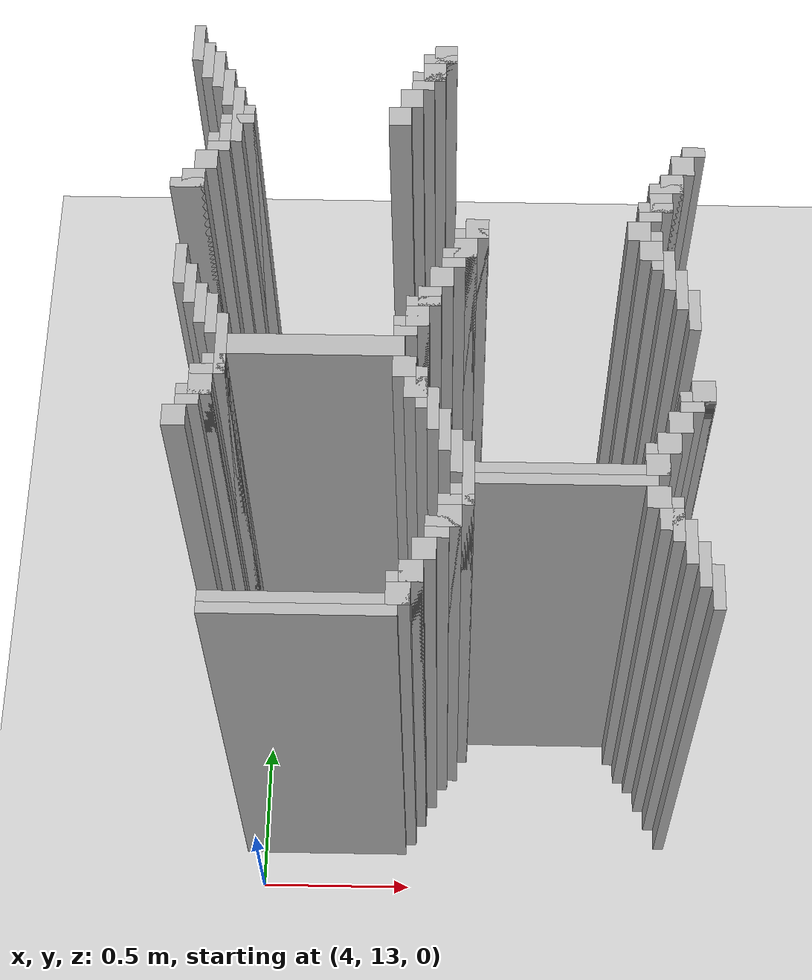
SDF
<sdf version="1.6">
 <world name="slam_world">
  <model name="ground_plane">
   <static>true</static>
   <link name="link">
    <collision name="collision">
     <geometry><plane><normal>0 0 1</normal><size>100 100</size></plane></geometry>
    </collision>
    <visual name="visual">
     <geometry><plane><normal>0 0 1</normal><size>100 100</size></plane></geometry>
     <material>
      <ambient>0.8 0.8 0.8 1</ambient>
      <diffuse>0.8 0.8 0.8 1</diffuse>
      <specular>0.8 0.8 0.8 1</specular>
     </material>
    </visual>
   </link>
  </model>
  <model name="wall_764">
   <static>true</static>
   <pose>3.810904872389791 15.104408352668212 1.0 0 0 0</pose>
   <link name="link">
    <collision name="collision">
     <geometry><box><size>0.03480278422273782 0.13921113689095127 2.0</size></box></geometry>
    </collision>
    <visual name="visual">
     <geometry><box><size>0.03480278422273782 0.13921113689095127 2.0</size></box></geometry>
     <material><ambient>0.5 0.5 0.5 1</ambient><diffuse>0.7 0.7 0.7 1</diffuse></material>
    </visual>
   </link>
  </model>
  <model name="wall_776">
   <static>true</static>
   <pose>3.845707656612529 15.034802784222737 1.0 0 0 0</pose>
   <link name="link">
    <collision name="collision">
     <geometry><box><size>0.03480278422273782 0.13921113689095127 2.0</size></box></geometry>
    </collision>
    <visual name="visual">
     <geometry><box><size>0.03480278422273782 0.13921113689095127 2.0</size></box></geometry>
     <material><ambient>0.5 0.5 0.5 1</ambient><diffuse>0.7 0.7 0.7 1</diffuse></material>
    </visual>
   </link>
  </model>
  <model name="wall_777">
   <static>true</static>
   <pose>4.593967517401392 15.069605568445475 1.0 0 0 0</pose>
   <link name="link">
    <collision name="collision">
     <geometry><box><size>0.06960556844547564 0.06960556844547564 2.0</size></box></geometry>
    </collision>
    <visual name="visual">
     <geometry><box><size>0.06960556844547564 0.06960556844547564 2.0</size></box></geometry>
     <material><ambient>0.5 0.5 0.5 1</ambient><diffuse>0.7 0.7 0.7 1</diffuse></material>
    </visual>
   </link>
  </model>
  <model name="wall_788">
   <static>true</static>
   <pose>3.8805104408352666 15.0 1.0 0 0 0</pose>
   <link name="link">
    <collision name="collision">
     <geometry><box><size>0.03480278422273782 0.13921113689095127 2.0</size></box></geometry>
    </collision>
    <visual name="visual">
     <geometry><box><size>0.03480278422273782 0.13921113689095127 2.0</size></box></geometry>
     <material><ambient>0.5 0.5 0.5 1</ambient><diffuse>0.7 0.7 0.7 1</diffuse></material>
    </visual>
   </link>
  </model>
  <model name="wall_789">
   <static>true</static>
   <pose>4.576566125290023 15.052204176334106 1.0 0 0 0</pose>
   <link name="link">
    <collision name="collision">
     <geometry><box><size>0.10440835266821345 0.03480278422273782 2.0</size></box></geometry>
    </collision>
    <visual name="visual">
     <geometry><box><size>0.10440835266821345 0.03480278422273782 2.0</size></box></geometry>
     <material><ambient>0.5 0.5 0.5 1</ambient><diffuse>0.7 0.7 0.7 1</diffuse></material>
    </visual>
   </link>
  </model>
  <model name="wall_800">
   <static>true</static>
   <pose>4.559164733178654 15.0 1.0 0 0 0</pose>
   <link name="link">
    <collision name="collision">
     <geometry><box><size>0.06960556844547564 0.06960556844547564 2.0</size></box></geometry>
    </collision>
    <visual name="visual">
     <geometry><box><size>0.06960556844547564 0.06960556844547564 2.0</size></box></geometry>
     <material><ambient>0.5 0.5 0.5 1</ambient><diffuse>0.7 0.7 0.7 1</diffuse></material>
    </visual>
   </link>
  </model>
  <model name="wall_809">
   <static>true</static>
   <pose>3.9153132250580045 14.930394431554523 1.0 0 0 0</pose>
   <link name="link">
    <collision name="collision">
     <geometry><box><size>0.03480278422273782 0.13921113689095127 2.0</size></box></geometry>
    </collision>
    <visual name="visual">
     <geometry><box><size>0.03480278422273782 0.13921113689095127 2.0</size></box></geometry>
     <material><ambient>0.5 0.5 0.5 1</ambient><diffuse>0.7 0.7 0.7 1</diffuse></material>
    </visual>
   </link>
  </model>
  <model name="wall_810">
   <static>true</static>
   <pose>4.541763341067285 14.982598607888631 1.0 0 0 0</pose>
   <link name="link">
    <collision name="collision">
     <geometry><box><size>0.10440835266821345 0.03480278422273782 2.0</size></box></geometry>
    </collision>
    <visual name="visual">
     <geometry><box><size>0.10440835266821345 0.03480278422273782 2.0</size></box></geometry>
     <material><ambient>0.5 0.5 0.5 1</ambient><diffuse>0.7 0.7 0.7 1</diffuse></material>
    </visual>
   </link>
  </model>
  <model name="wall_820">
   <static>true</static>
   <pose>4.524361948955916 14.947795823665892 1.0 0 0 0</pose>
   <link name="link">
    <collision name="collision">
     <geometry><box><size>0.06960556844547564 0.03480278422273782 2.0</size></box></geometry>
    </collision>
    <visual name="visual">
     <geometry><box><size>0.06960556844547564 0.03480278422273782 2.0</size></box></geometry>
     <material><ambient>0.5 0.5 0.5 1</ambient><diffuse>0.7 0.7 0.7 1</diffuse></material>
    </visual>
   </link>
  </model>
  <model name="wall_829">
   <static>true</static>
   <pose>3.9501160092807424 14.825986078886311 1.0 0 0 0</pose>
   <link name="link">
    <collision name="collision">
     <geometry><box><size>0.03480278422273782 0.2088167053364269 2.0</size></box></geometry>
    </collision>
    <visual name="visual">
     <geometry><box><size>0.03480278422273782 0.2088167053364269 2.0</size></box></geometry>
     <material><ambient>0.5 0.5 0.5 1</ambient><diffuse>0.7 0.7 0.7 1</diffuse></material>
    </visual>
   </link>
  </model>
  <model name="wall_830">
   <static>true</static>
   <pose>4.489559164733178 14.895591647331786 1.0 0 0 0</pose>
   <link name="link">
    <collision name="collision">
     <geometry><box><size>0.06960556844547564 0.06960556844547564 2.0</size></box></geometry>
    </collision>
    <visual name="visual">
     <geometry><box><size>0.06960556844547564 0.06960556844547564 2.0</size></box></geometry>
     <material><ambient>0.5 0.5 0.5 1</ambient><diffuse>0.7 0.7 0.7 1</diffuse></material>
    </visual>
   </link>
  </model>
  <model name="wall_846">
   <static>true</static>
   <pose>3.98491879350348 14.825986078886311 1.0 0 0 0</pose>
   <link name="link">
    <collision name="collision">
     <geometry><box><size>0.03480278422273782 0.06960556844547564 2.0</size></box></geometry>
    </collision>
    <visual name="visual">
     <geometry><box><size>0.03480278422273782 0.06960556844547564 2.0</size></box></geometry>
     <material><ambient>0.5 0.5 0.5 1</ambient><diffuse>0.7 0.7 0.7 1</diffuse></material>
    </visual>
   </link>
  </model>
  <model name="wall_847">
   <static>true</static>
   <pose>4.454756380510441 14.825986078886311 1.0 0 0 0</pose>
   <link name="link">
    <collision name="collision">
     <geometry><box><size>0.06960556844547564 0.06960556844547564 2.0</size></box></geometry>
    </collision>
    <visual name="visual">
     <geometry><box><size>0.06960556844547564 0.06960556844547564 2.0</size></box></geometry>
     <material><ambient>0.5 0.5 0.5 1</ambient><diffuse>0.7 0.7 0.7 1</diffuse></material>
    </visual>
   </link>
  </model>
  <model name="wall_859">
   <static>true</static>
   <pose>3.9501160092807424 14.80858468677494 1.0 0 0 0</pose>
   <link name="link">
    <collision name="collision">
     <geometry><box><size>0.10440835266821345 0.03480278422273782 2.0</size></box></geometry>
    </collision>
    <visual name="visual">
     <geometry><box><size>0.10440835266821345 0.03480278422273782 2.0</size></box></geometry>
     <material><ambient>0.5 0.5 0.5 1</ambient><diffuse>0.7 0.7 0.7 1</diffuse></material>
    </visual>
   </link>
  </model>
  <model name="wall_870">
   <static>true</static>
   <pose>3.932714617169373 14.756380510440835 1.0 0 0 0</pose>
   <link name="link">
    <collision name="collision">
     <geometry><box><size>0.06960556844547564 0.06960556844547564 2.0</size></box></geometry>
    </collision>
    <visual name="visual">
     <geometry><box><size>0.06960556844547564 0.06960556844547564 2.0</size></box></geometry>
     <material><ambient>0.5 0.5 0.5 1</ambient><diffuse>0.7 0.7 0.7 1</diffuse></material>
    </visual>
   </link>
  </model>
  <model name="wall_882">
   <static>true</static>
   <pose>3.9153132250580045 14.738979118329466 1.0 0 0 0</pose>
   <link name="link">
    <collision name="collision">
     <geometry><box><size>0.10440835266821345 0.03480278422273782 2.0</size></box></geometry>
    </collision>
    <visual name="visual">
     <geometry><box><size>0.10440835266821345 0.03480278422273782 2.0</size></box></geometry>
     <material><ambient>0.5 0.5 0.5 1</ambient><diffuse>0.7 0.7 0.7 1</diffuse></material>
    </visual>
   </link>
  </model>
  <model name="wall_892">
   <static>true</static>
   <pose>3.897911832946636 14.704176334106728 1.0 0 0 0</pose>
   <link name="link">
    <collision name="collision">
     <geometry><box><size>0.06960556844547564 0.03480278422273782 2.0</size></box></geometry>
    </collision>
    <visual name="visual">
     <geometry><box><size>0.06960556844547564 0.03480278422273782 2.0</size></box></geometry>
     <material><ambient>0.5 0.5 0.5 1</ambient><diffuse>0.7 0.7 0.7 1</diffuse></material>
    </visual>
   </link>
  </model>
  <model name="wall_893">
   <static>true</static>
   <pose>5.359628770301624 14.704176334106728 1.0 0 0 0</pose>
   <link name="link">
    <collision name="collision">
     <geometry><box><size>0.06960556844547564 0.03480278422273782 2.0</size></box></geometry>
    </collision>
    <visual name="visual">
     <geometry><box><size>0.06960556844547564 0.03480278422273782 2.0</size></box></geometry>
     <material><ambient>0.5 0.5 0.5 1</ambient><diffuse>0.7 0.7 0.7 1</diffuse></material>
    </visual>
   </link>
  </model>
  <model name="wall_902">
   <static>true</static>
   <pose>3.863109048723898 14.65197215777262 1.0 0 0 0</pose>
   <link name="link">
    <collision name="collision">
     <geometry><box><size>0.06960556844547564 0.06960556844547564 2.0</size></box></geometry>
    </collision>
    <visual name="visual">
     <geometry><box><size>0.06960556844547564 0.06960556844547564 2.0</size></box></geometry>
     <material><ambient>0.5 0.5 0.5 1</ambient><diffuse>0.7 0.7 0.7 1</diffuse></material>
    </visual>
   </link>
  </model>
  <model name="wall_903">
   <static>true</static>
   <pose>5.324825986078886 14.65197215777262 1.0 0 0 0</pose>
   <link name="link">
    <collision name="collision">
     <geometry><box><size>0.06960556844547564 0.06960556844547564 2.0</size></box></geometry>
    </collision>
    <visual name="visual">
     <geometry><box><size>0.06960556844547564 0.06960556844547564 2.0</size></box></geometry>
     <material><ambient>0.5 0.5 0.5 1</ambient><diffuse>0.7 0.7 0.7 1</diffuse></material>
    </visual>
   </link>
  </model>
  <model name="wall_914">
   <static>true</static>
   <pose>3.82830626450116 14.582366589327146 1.0 0 0 0</pose>
   <link name="link">
    <collision name="collision">
     <geometry><box><size>0.06960556844547564 0.06960556844547564 2.0</size></box></geometry>
    </collision>
    <visual name="visual">
     <geometry><box><size>0.06960556844547564 0.06960556844547564 2.0</size></box></geometry>
     <material><ambient>0.5 0.5 0.5 1</ambient><diffuse>0.7 0.7 0.7 1</diffuse></material>
    </visual>
   </link>
  </model>
  <model name="wall_915">
   <static>true</static>
   <pose>5.290023201856148 14.582366589327146 1.0 0 0 0</pose>
   <link name="link">
    <collision name="collision">
     <geometry><box><size>0.06960556844547564 0.06960556844547564 2.0</size></box></geometry>
    </collision>
    <visual name="visual">
     <geometry><box><size>0.06960556844547564 0.06960556844547564 2.0</size></box></geometry>
     <material><ambient>0.5 0.5 0.5 1</ambient><diffuse>0.7 0.7 0.7 1</diffuse></material>
    </visual>
   </link>
  </model>
  <model name="wall_926">
   <static>true</static>
   <pose>3.810904872389791 14.564965197215777 1.0 0 0 0</pose>
   <link name="link">
    <collision name="collision">
     <geometry><box><size>0.10440835266821345 0.03480278422273782 2.0</size></box></geometry>
    </collision>
    <visual name="visual">
     <geometry><box><size>0.10440835266821345 0.03480278422273782 2.0</size></box></geometry>
     <material><ambient>0.5 0.5 0.5 1</ambient><diffuse>0.7 0.7 0.7 1</diffuse></material>
    </visual>
   </link>
  </model>
  <model name="wall_927">
   <static>true</static>
   <pose>5.27262180974478 14.564965197215777 1.0 0 0 0</pose>
   <link name="link">
    <collision name="collision">
     <geometry><box><size>0.10440835266821345 0.03480278422273782 2.0</size></box></geometry>
    </collision>
    <visual name="visual">
     <geometry><box><size>0.10440835266821345 0.03480278422273782 2.0</size></box></geometry>
     <material><ambient>0.5 0.5 0.5 1</ambient><diffuse>0.7 0.7 0.7 1</diffuse></material>
    </visual>
   </link>
  </model>
  <model name="wall_937">
   <static>true</static>
   <pose>5.25522041763341 14.512761020881669 1.0 0 0 0</pose>
   <link name="link">
    <collision name="collision">
     <geometry><box><size>0.06960556844547564 0.06960556844547564 2.0</size></box></geometry>
    </collision>
    <visual name="visual">
     <geometry><box><size>0.06960556844547564 0.06960556844547564 2.0</size></box></geometry>
     <material><ambient>0.5 0.5 0.5 1</ambient><diffuse>0.7 0.7 0.7 1</diffuse></material>
    </visual>
   </link>
  </model>
  <model name="wall_946">
   <static>true</static>
   <pose>5.237819025522041 14.4953596287703 1.0 0 0 0</pose>
   <link name="link">
    <collision name="collision">
     <geometry><box><size>0.10440835266821345 0.03480278422273782 2.0</size></box></geometry>
    </collision>
    <visual name="visual">
     <geometry><box><size>0.10440835266821345 0.03480278422273782 2.0</size></box></geometry>
     <material><ambient>0.5 0.5 0.5 1</ambient><diffuse>0.7 0.7 0.7 1</diffuse></material>
    </visual>
   </link>
  </model>
  <model name="wall_956">
   <static>true</static>
   <pose>5.220417633410673 14.460556844547563 1.0 0 0 0</pose>
   <link name="link">
    <collision name="collision">
     <geometry><box><size>0.06960556844547564 0.03480278422273782 2.0</size></box></geometry>
    </collision>
    <visual name="visual">
     <geometry><box><size>0.06960556844547564 0.03480278422273782 2.0</size></box></geometry>
     <material><ambient>0.5 0.5 0.5 1</ambient><diffuse>0.7 0.7 0.7 1</diffuse></material>
    </visual>
   </link>
  </model>
  <model name="wall_966">
   <static>true</static>
   <pose>4.698375870069605 14.408352668213457 1.0 0 0 0</pose>
   <link name="link">
    <collision name="collision">
     <geometry><box><size>0.06960556844547564 0.06960556844547564 2.0</size></box></geometry>
    </collision>
    <visual name="visual">
     <geometry><box><size>0.06960556844547564 0.06960556844547564 2.0</size></box></geometry>
     <material><ambient>0.5 0.5 0.5 1</ambient><diffuse>0.7 0.7 0.7 1</diffuse></material>
    </visual>
   </link>
  </model>
  <model name="wall_967">
   <static>true</static>
   <pose>5.185614849187935 14.408352668213457 1.0 0 0 0</pose>
   <link name="link">
    <collision name="collision">
     <geometry><box><size>0.06960556844547564 0.06960556844547564 2.0</size></box></geometry>
    </collision>
    <visual name="visual">
     <geometry><box><size>0.06960556844547564 0.06960556844547564 2.0</size></box></geometry>
     <material><ambient>0.5 0.5 0.5 1</ambient><diffuse>0.7 0.7 0.7 1</diffuse></material>
    </visual>
   </link>
  </model>
  <model name="wall_980">
   <static>true</static>
   <pose>4.6809744779582365 14.390951276102088 1.0 0 0 0</pose>
   <link name="link">
    <collision name="collision">
     <geometry><box><size>0.10440835266821345 0.03480278422273782 2.0</size></box></geometry>
    </collision>
    <visual name="visual">
     <geometry><box><size>0.10440835266821345 0.03480278422273782 2.0</size></box></geometry>
     <material><ambient>0.5 0.5 0.5 1</ambient><diffuse>0.7 0.7 0.7 1</diffuse></material>
    </visual>
   </link>
  </model>
  <model name="wall_981">
   <static>true</static>
   <pose>5.237819025522041 14.33874709976798 1.0 0 0 0</pose>
   <link name="link">
    <collision name="collision">
     <geometry><box><size>0.03480278422273782 0.13921113689095127 2.0</size></box></geometry>
    </collision>
    <visual name="visual">
     <geometry><box><size>0.03480278422273782 0.13921113689095127 2.0</size></box></geometry>
     <material><ambient>0.5 0.5 0.5 1</ambient><diffuse>0.7 0.7 0.7 1</diffuse></material>
    </visual>
   </link>
  </model>
  <model name="wall_995">
   <static>true</static>
   <pose>4.663573085846868 14.33874709976798 1.0 0 0 0</pose>
   <link name="link">
    <collision name="collision">
     <geometry><box><size>0.06960556844547564 0.06960556844547564 2.0</size></box></geometry>
    </collision>
    <visual name="visual">
     <geometry><box><size>0.06960556844547564 0.06960556844547564 2.0</size></box></geometry>
     <material><ambient>0.5 0.5 0.5 1</ambient><diffuse>0.7 0.7 0.7 1</diffuse></material>
    </visual>
   </link>
  </model>
  <model name="wall_996">
   <static>true</static>
   <pose>5.220417633410673 14.33874709976798 1.0 0 0 0</pose>
   <link name="link">
    <collision name="collision">
     <geometry><box><size>0.06960556844547564 0.06960556844547564 2.0</size></box></geometry>
    </collision>
    <visual name="visual">
     <geometry><box><size>0.06960556844547564 0.06960556844547564 2.0</size></box></geometry>
     <material><ambient>0.5 0.5 0.5 1</ambient><diffuse>0.7 0.7 0.7 1</diffuse></material>
    </visual>
   </link>
  </model>
  <model name="wall_1009">
   <static>true</static>
   <pose>3.810904872389791 14.269141531322505 1.0 0 0 0</pose>
   <link name="link">
    <collision name="collision">
     <geometry><box><size>0.03480278422273782 0.13921113689095127 2.0</size></box></geometry>
    </collision>
    <visual name="visual">
     <geometry><box><size>0.03480278422273782 0.13921113689095127 2.0</size></box></geometry>
     <material><ambient>0.5 0.5 0.5 1</ambient><diffuse>0.7 0.7 0.7 1</diffuse></material>
    </visual>
   </link>
  </model>
  <model name="wall_1010">
   <static>true</static>
   <pose>4.646171693735498 14.321345707656612 1.0 0 0 0</pose>
   <link name="link">
    <collision name="collision">
     <geometry><box><size>0.10440835266821345 0.03480278422273782 2.0</size></box></geometry>
    </collision>
    <visual name="visual">
     <geometry><box><size>0.10440835266821345 0.03480278422273782 2.0</size></box></geometry>
     <material><ambient>0.5 0.5 0.5 1</ambient><diffuse>0.7 0.7 0.7 1</diffuse></material>
    </visual>
   </link>
  </model>
  <model name="wall_1011">
   <static>true</static>
   <pose>5.27262180974478 14.269141531322505 1.0 0 0 0</pose>
   <link name="link">
    <collision name="collision">
     <geometry><box><size>0.03480278422273782 0.13921113689095127 2.0</size></box></geometry>
    </collision>
    <visual name="visual">
     <geometry><box><size>0.03480278422273782 0.13921113689095127 2.0</size></box></geometry>
     <material><ambient>0.5 0.5 0.5 1</ambient><diffuse>0.7 0.7 0.7 1</diffuse></material>
    </visual>
   </link>
  </model>
  <model name="wall_1024">
   <static>true</static>
   <pose>4.6287703016241295 14.286542923433874 1.0 0 0 0</pose>
   <link name="link">
    <collision name="collision">
     <geometry><box><size>0.06960556844547564 0.03480278422273782 2.0</size></box></geometry>
    </collision>
    <visual name="visual">
     <geometry><box><size>0.06960556844547564 0.03480278422273782 2.0</size></box></geometry>
     <material><ambient>0.5 0.5 0.5 1</ambient><diffuse>0.7 0.7 0.7 1</diffuse></material>
    </visual>
   </link>
  </model>
  <model name="wall_1033">
   <static>true</static>
   <pose>3.845707656612529 14.199535962877029 1.0 0 0 0</pose>
   <link name="link">
    <collision name="collision">
     <geometry><box><size>0.03480278422273782 0.13921113689095127 2.0</size></box></geometry>
    </collision>
    <visual name="visual">
     <geometry><box><size>0.03480278422273782 0.13921113689095127 2.0</size></box></geometry>
     <material><ambient>0.5 0.5 0.5 1</ambient><diffuse>0.7 0.7 0.7 1</diffuse></material>
    </visual>
   </link>
  </model>
  <model name="wall_1034">
   <static>true</static>
   <pose>4.593967517401392 14.234338747099768 1.0 0 0 0</pose>
   <link name="link">
    <collision name="collision">
     <geometry><box><size>0.06960556844547564 0.06960556844547564 2.0</size></box></geometry>
    </collision>
    <visual name="visual">
     <geometry><box><size>0.06960556844547564 0.06960556844547564 2.0</size></box></geometry>
     <material><ambient>0.5 0.5 0.5 1</ambient><diffuse>0.7 0.7 0.7 1</diffuse></material>
    </visual>
   </link>
  </model>
  <model name="wall_1035">
   <static>true</static>
   <pose>5.307424593967517 14.199535962877029 1.0 0 0 0</pose>
   <link name="link">
    <collision name="collision">
     <geometry><box><size>0.03480278422273782 0.13921113689095127 2.0</size></box></geometry>
    </collision>
    <visual name="visual">
     <geometry><box><size>0.03480278422273782 0.13921113689095127 2.0</size></box></geometry>
     <material><ambient>0.5 0.5 0.5 1</ambient><diffuse>0.7 0.7 0.7 1</diffuse></material>
    </visual>
   </link>
  </model>
  <model name="wall_1048">
   <static>true</static>
   <pose>3.8805104408352666 14.129930394431554 1.0 0 0 0</pose>
   <link name="link">
    <collision name="collision">
     <geometry><box><size>0.03480278422273782 0.13921113689095127 2.0</size></box></geometry>
    </collision>
    <visual name="visual">
     <geometry><box><size>0.03480278422273782 0.13921113689095127 2.0</size></box></geometry>
     <material><ambient>0.5 0.5 0.5 1</ambient><diffuse>0.7 0.7 0.7 1</diffuse></material>
    </visual>
   </link>
  </model>
  <model name="wall_1049">
   <static>true</static>
   <pose>4.559164733178654 14.164733178654291 1.0 0 0 0</pose>
   <link name="link">
    <collision name="collision">
     <geometry><box><size>0.06960556844547564 0.06960556844547564 2.0</size></box></geometry>
    </collision>
    <visual name="visual">
     <geometry><box><size>0.06960556844547564 0.06960556844547564 2.0</size></box></geometry>
     <material><ambient>0.5 0.5 0.5 1</ambient><diffuse>0.7 0.7 0.7 1</diffuse></material>
    </visual>
   </link>
  </model>
  <model name="wall_1050">
   <static>true</static>
   <pose>5.342227378190255 14.129930394431554 1.0 0 0 0</pose>
   <link name="link">
    <collision name="collision">
     <geometry><box><size>0.03480278422273782 0.13921113689095127 2.0</size></box></geometry>
    </collision>
    <visual name="visual">
     <geometry><box><size>0.03480278422273782 0.13921113689095127 2.0</size></box></geometry>
     <material><ambient>0.5 0.5 0.5 1</ambient><diffuse>0.7 0.7 0.7 1</diffuse></material>
    </visual>
   </link>
  </model>
  <model name="wall_1063">
   <static>true</static>
   <pose>3.9153132250580045 14.095127610208817 1.0 0 0 0</pose>
   <link name="link">
    <collision name="collision">
     <geometry><box><size>0.03480278422273782 0.13921113689095127 2.0</size></box></geometry>
    </collision>
    <visual name="visual">
     <geometry><box><size>0.03480278422273782 0.13921113689095127 2.0</size></box></geometry>
     <material><ambient>0.5 0.5 0.5 1</ambient><diffuse>0.7 0.7 0.7 1</diffuse></material>
    </visual>
   </link>
  </model>
  <model name="wall_1064">
   <static>true</static>
   <pose>4.541763341067285 14.147331786542923 1.0 0 0 0</pose>
   <link name="link">
    <collision name="collision">
     <geometry><box><size>0.10440835266821345 0.03480278422273782 2.0</size></box></geometry>
    </collision>
    <visual name="visual">
     <geometry><box><size>0.10440835266821345 0.03480278422273782 2.0</size></box></geometry>
     <material><ambient>0.5 0.5 0.5 1</ambient><diffuse>0.7 0.7 0.7 1</diffuse></material>
    </visual>
   </link>
  </model>
  <model name="wall_1077">
   <static>true</static>
   <pose>4.524361948955916 14.095127610208817 1.0 0 0 0</pose>
   <link name="link">
    <collision name="collision">
     <geometry><box><size>0.06960556844547564 0.06960556844547564 2.0</size></box></geometry>
    </collision>
    <visual name="visual">
     <geometry><box><size>0.06960556844547564 0.06960556844547564 2.0</size></box></geometry>
     <material><ambient>0.5 0.5 0.5 1</ambient><diffuse>0.7 0.7 0.7 1</diffuse></material>
    </visual>
   </link>
  </model>
  <model name="wall_1086">
   <static>true</static>
   <pose>3.9501160092807424 13.990719257540603 1.0 0 0 0</pose>
   <link name="link">
    <collision name="collision">
     <geometry><box><size>0.03480278422273782 0.2088167053364269 2.0</size></box></geometry>
    </collision>
    <visual name="visual">
     <geometry><box><size>0.03480278422273782 0.2088167053364269 2.0</size></box></geometry>
     <material><ambient>0.5 0.5 0.5 1</ambient><diffuse>0.7 0.7 0.7 1</diffuse></material>
    </visual>
   </link>
  </model>
  <model name="wall_1087">
   <static>true</static>
   <pose>4.506960556844548 14.077726218097448 1.0 0 0 0</pose>
   <link name="link">
    <collision name="collision">
     <geometry><box><size>0.10440835266821345 0.03480278422273782 2.0</size></box></geometry>
    </collision>
    <visual name="visual">
     <geometry><box><size>0.10440835266821345 0.03480278422273782 2.0</size></box></geometry>
     <material><ambient>0.5 0.5 0.5 1</ambient><diffuse>0.7 0.7 0.7 1</diffuse></material>
    </visual>
   </link>
  </model>
  <model name="wall_1100">
   <static>true</static>
   <pose>4.489559164733178 14.042923433874709 1.0 0 0 0</pose>
   <link name="link">
    <collision name="collision">
     <geometry><box><size>0.06960556844547564 0.03480278422273782 2.0</size></box></geometry>
    </collision>
    <visual name="visual">
     <geometry><box><size>0.06960556844547564 0.03480278422273782 2.0</size></box></geometry>
     <material><ambient>0.5 0.5 0.5 1</ambient><diffuse>0.7 0.7 0.7 1</diffuse></material>
    </visual>
   </link>
  </model>
  <model name="wall_1109">
   <static>true</static>
   <pose>4.228538283062645 13.990719257540603 1.0 0 0 0</pose>
   <link name="link">
    <collision name="collision">
     <geometry><box><size>0.5220417633410672 0.06960556844547564 2.0</size></box></geometry>
    </collision>
    <visual name="visual">
     <geometry><box><size>0.5220417633410672 0.06960556844547564 2.0</size></box></geometry>
     <material><ambient>0.5 0.5 0.5 1</ambient><diffuse>0.7 0.7 0.7 1</diffuse></material>
    </visual>
   </link>
  </model>
  <model name="wall_1122">
   <static>true</static>
   <pose>3.932714617169373 13.921113689095128 1.0 0 0 0</pose>
   <link name="link">
    <collision name="collision">
     <geometry><box><size>0.06960556844547564 0.06960556844547564 2.0</size></box></geometry>
    </collision>
    <visual name="visual">
     <geometry><box><size>0.06960556844547564 0.06960556844547564 2.0</size></box></geometry>
     <material><ambient>0.5 0.5 0.5 1</ambient><diffuse>0.7 0.7 0.7 1</diffuse></material>
    </visual>
   </link>
  </model>
  <model name="wall_1123">
   <static>true</static>
   <pose>4.489559164733178 13.921113689095128 1.0 0 0 0</pose>
   <link name="link">
    <collision name="collision">
     <geometry><box><size>0.06960556844547564 0.06960556844547564 2.0</size></box></geometry>
    </collision>
    <visual name="visual">
     <geometry><box><size>0.06960556844547564 0.06960556844547564 2.0</size></box></geometry>
     <material><ambient>0.5 0.5 0.5 1</ambient><diffuse>0.7 0.7 0.7 1</diffuse></material>
    </visual>
   </link>
  </model>
  <model name="wall_1137">
   <static>true</static>
   <pose>3.9153132250580045 13.903712296983759 1.0 0 0 0</pose>
   <link name="link">
    <collision name="collision">
     <geometry><box><size>0.10440835266821345 0.03480278422273782 2.0</size></box></geometry>
    </collision>
    <visual name="visual">
     <geometry><box><size>0.10440835266821345 0.03480278422273782 2.0</size></box></geometry>
     <material><ambient>0.5 0.5 0.5 1</ambient><diffuse>0.7 0.7 0.7 1</diffuse></material>
    </visual>
   </link>
  </model>
  <model name="wall_1138">
   <static>true</static>
   <pose>4.541763341067285 13.851508120649651 1.0 0 0 0</pose>
   <link name="link">
    <collision name="collision">
     <geometry><box><size>0.03480278422273782 0.13921113689095127 2.0</size></box></geometry>
    </collision>
    <visual name="visual">
     <geometry><box><size>0.03480278422273782 0.13921113689095127 2.0</size></box></geometry>
     <material><ambient>0.5 0.5 0.5 1</ambient><diffuse>0.7 0.7 0.7 1</diffuse></material>
    </visual>
   </link>
  </model>
  <model name="wall_1152">
   <static>true</static>
   <pose>3.897911832946636 13.851508120649651 1.0 0 0 0</pose>
   <link name="link">
    <collision name="collision">
     <geometry><box><size>0.06960556844547564 0.06960556844547564 2.0</size></box></geometry>
    </collision>
    <visual name="visual">
     <geometry><box><size>0.06960556844547564 0.06960556844547564 2.0</size></box></geometry>
     <material><ambient>0.5 0.5 0.5 1</ambient><diffuse>0.7 0.7 0.7 1</diffuse></material>
    </visual>
   </link>
  </model>
  <model name="wall_1153">
   <static>true</static>
   <pose>4.524361948955916 13.851508120649651 1.0 0 0 0</pose>
   <link name="link">
    <collision name="collision">
     <geometry><box><size>0.06960556844547564 0.06960556844547564 2.0</size></box></geometry>
    </collision>
    <visual name="visual">
     <geometry><box><size>0.06960556844547564 0.06960556844547564 2.0</size></box></geometry>
     <material><ambient>0.5 0.5 0.5 1</ambient><diffuse>0.7 0.7 0.7 1</diffuse></material>
    </visual>
   </link>
  </model>
  <model name="wall_1154">
   <static>true</static>
   <pose>5.359628770301624 13.851508120649651 1.0 0 0 0</pose>
   <link name="link">
    <collision name="collision">
     <geometry><box><size>0.06960556844547564 0.06960556844547564 2.0</size></box></geometry>
    </collision>
    <visual name="visual">
     <geometry><box><size>0.06960556844547564 0.06960556844547564 2.0</size></box></geometry>
     <material><ambient>0.5 0.5 0.5 1</ambient><diffuse>0.7 0.7 0.7 1</diffuse></material>
    </visual>
   </link>
  </model>
  <model name="wall_1167">
   <static>true</static>
   <pose>3.8805104408352666 13.834106728538282 1.0 0 0 0</pose>
   <link name="link">
    <collision name="collision">
     <geometry><box><size>0.10440835266821345 0.03480278422273782 2.0</size></box></geometry>
    </collision>
    <visual name="visual">
     <geometry><box><size>0.10440835266821345 0.03480278422273782 2.0</size></box></geometry>
     <material><ambient>0.5 0.5 0.5 1</ambient><diffuse>0.7 0.7 0.7 1</diffuse></material>
    </visual>
   </link>
  </model>
  <model name="wall_1168">
   <static>true</static>
   <pose>4.576566125290023 13.781902552204176 1.0 0 0 0</pose>
   <link name="link">
    <collision name="collision">
     <geometry><box><size>0.03480278422273782 0.13921113689095127 2.0</size></box></geometry>
    </collision>
    <visual name="visual">
     <geometry><box><size>0.03480278422273782 0.13921113689095127 2.0</size></box></geometry>
     <material><ambient>0.5 0.5 0.5 1</ambient><diffuse>0.7 0.7 0.7 1</diffuse></material>
    </visual>
   </link>
  </model>
  <model name="wall_1169">
   <static>true</static>
   <pose>5.342227378190255 13.834106728538282 1.0 0 0 0</pose>
   <link name="link">
    <collision name="collision">
     <geometry><box><size>0.10440835266821345 0.03480278422273782 2.0</size></box></geometry>
    </collision>
    <visual name="visual">
     <geometry><box><size>0.10440835266821345 0.03480278422273782 2.0</size></box></geometry>
     <material><ambient>0.5 0.5 0.5 1</ambient><diffuse>0.7 0.7 0.7 1</diffuse></material>
    </visual>
   </link>
  </model>
  <model name="wall_1180">
   <static>true</static>
   <pose>3.863109048723898 13.799303944315545 1.0 0 0 0</pose>
   <link name="link">
    <collision name="collision">
     <geometry><box><size>0.06960556844547564 0.03480278422273782 2.0</size></box></geometry>
    </collision>
    <visual name="visual">
     <geometry><box><size>0.06960556844547564 0.03480278422273782 2.0</size></box></geometry>
     <material><ambient>0.5 0.5 0.5 1</ambient><diffuse>0.7 0.7 0.7 1</diffuse></material>
    </visual>
   </link>
  </model>
  <model name="wall_1181">
   <static>true</static>
   <pose>5.324825986078886 13.799303944315545 1.0 0 0 0</pose>
   <link name="link">
    <collision name="collision">
     <geometry><box><size>0.06960556844547564 0.03480278422273782 2.0</size></box></geometry>
    </collision>
    <visual name="visual">
     <geometry><box><size>0.06960556844547564 0.03480278422273782 2.0</size></box></geometry>
     <material><ambient>0.5 0.5 0.5 1</ambient><diffuse>0.7 0.7 0.7 1</diffuse></material>
    </visual>
   </link>
  </model>
  <model name="wall_1189">
   <static>true</static>
   <pose>3.82830626450116 13.747099767981437 1.0 0 0 0</pose>
   <link name="link">
    <collision name="collision">
     <geometry><box><size>0.06960556844547564 0.06960556844547564 2.0</size></box></geometry>
    </collision>
    <visual name="visual">
     <geometry><box><size>0.06960556844547564 0.06960556844547564 2.0</size></box></geometry>
     <material><ambient>0.5 0.5 0.5 1</ambient><diffuse>0.7 0.7 0.7 1</diffuse></material>
    </visual>
   </link>
  </model>
  <model name="wall_1190">
   <static>true</static>
   <pose>4.611368909512761 13.7122969837587 1.0 0 0 0</pose>
   <link name="link">
    <collision name="collision">
     <geometry><box><size>0.03480278422273782 0.13921113689095127 2.0</size></box></geometry>
    </collision>
    <visual name="visual">
     <geometry><box><size>0.03480278422273782 0.13921113689095127 2.0</size></box></geometry>
     <material><ambient>0.5 0.5 0.5 1</ambient><diffuse>0.7 0.7 0.7 1</diffuse></material>
    </visual>
   </link>
  </model>
  <model name="wall_1191">
   <static>true</static>
   <pose>5.290023201856148 13.747099767981437 1.0 0 0 0</pose>
   <link name="link">
    <collision name="collision">
     <geometry><box><size>0.06960556844547564 0.06960556844547564 2.0</size></box></geometry>
    </collision>
    <visual name="visual">
     <geometry><box><size>0.06960556844547564 0.06960556844547564 2.0</size></box></geometry>
     <material><ambient>0.5 0.5 0.5 1</ambient><diffuse>0.7 0.7 0.7 1</diffuse></material>
    </visual>
   </link>
  </model>
  <model name="wall_1205">
   <static>true</static>
   <pose>4.646171693735498 13.642691415313225 1.0 0 0 0</pose>
   <link name="link">
    <collision name="collision">
     <geometry><box><size>0.03480278422273782 0.13921113689095127 2.0</size></box></geometry>
    </collision>
    <visual name="visual">
     <geometry><box><size>0.03480278422273782 0.13921113689095127 2.0</size></box></geometry>
     <material><ambient>0.5 0.5 0.5 1</ambient><diffuse>0.7 0.7 0.7 1</diffuse></material>
    </visual>
   </link>
  </model>
  <model name="wall_1206">
   <static>true</static>
   <pose>5.25522041763341 13.677494199535962 1.0 0 0 0</pose>
   <link name="link">
    <collision name="collision">
     <geometry><box><size>0.06960556844547564 0.06960556844547564 2.0</size></box></geometry>
    </collision>
    <visual name="visual">
     <geometry><box><size>0.06960556844547564 0.06960556844547564 2.0</size></box></geometry>
     <material><ambient>0.5 0.5 0.5 1</ambient><diffuse>0.7 0.7 0.7 1</diffuse></material>
    </visual>
   </link>
  </model>
  <model name="wall_1220">
   <static>true</static>
   <pose>4.6809744779582365 13.573085846867748 1.0 0 0 0</pose>
   <link name="link">
    <collision name="collision">
     <geometry><box><size>0.03480278422273782 0.2088167053364269 2.0</size></box></geometry>
    </collision>
    <visual name="visual">
     <geometry><box><size>0.03480278422273782 0.2088167053364269 2.0</size></box></geometry>
     <material><ambient>0.5 0.5 0.5 1</ambient><diffuse>0.7 0.7 0.7 1</diffuse></material>
    </visual>
   </link>
  </model>
  <model name="wall_1221">
   <static>true</static>
   <pose>5.237819025522041 13.660092807424594 1.0 0 0 0</pose>
   <link name="link">
    <collision name="collision">
     <geometry><box><size>0.10440835266821345 0.03480278422273782 2.0</size></box></geometry>
    </collision>
    <visual name="visual">
     <geometry><box><size>0.10440835266821345 0.03480278422273782 2.0</size></box></geometry>
     <material><ambient>0.5 0.5 0.5 1</ambient><diffuse>0.7 0.7 0.7 1</diffuse></material>
    </visual>
   </link>
  </model>
  <model name="wall_1233">
   <static>true</static>
   <pose>5.220417633410673 13.607888631090487 1.0 0 0 0</pose>
   <link name="link">
    <collision name="collision">
     <geometry><box><size>0.06960556844547564 0.06960556844547564 2.0</size></box></geometry>
    </collision>
    <visual name="visual">
     <geometry><box><size>0.06960556844547564 0.06960556844547564 2.0</size></box></geometry>
     <material><ambient>0.5 0.5 0.5 1</ambient><diffuse>0.7 0.7 0.7 1</diffuse></material>
    </visual>
   </link>
  </model>
  <model name="wall_1243">
   <static>true</static>
   <pose>4.976798143851508 13.590487238979117 1.0 0 0 0</pose>
   <link name="link">
    <collision name="collision">
     <geometry><box><size>0.5568445475638051 0.03480278422273782 2.0</size></box></geometry>
    </collision>
    <visual name="visual">
     <geometry><box><size>0.5568445475638051 0.03480278422273782 2.0</size></box></geometry>
     <material><ambient>0.5 0.5 0.5 1</ambient><diffuse>0.7 0.7 0.7 1</diffuse></material>
    </visual>
   </link>
  </model>
  <model name="wall_1252">
   <static>true</static>
   <pose>4.959396751740139 13.55568445475638 1.0 0 0 0</pose>
   <link name="link">
    <collision name="collision">
     <geometry><box><size>0.5220417633410672 0.03480278422273782 2.0</size></box></geometry>
    </collision>
    <visual name="visual">
     <geometry><box><size>0.5220417633410672 0.03480278422273782 2.0</size></box></geometry>
     <material><ambient>0.5 0.5 0.5 1</ambient><diffuse>0.7 0.7 0.7 1</diffuse></material>
    </visual>
   </link>
  </model>
  <model name="wall_1262">
   <static>true</static>
   <pose>4.663573085846868 13.503480278422273 1.0 0 0 0</pose>
   <link name="link">
    <collision name="collision">
     <geometry><box><size>0.06960556844547564 0.06960556844547564 2.0</size></box></geometry>
    </collision>
    <visual name="visual">
     <geometry><box><size>0.06960556844547564 0.06960556844547564 2.0</size></box></geometry>
     <material><ambient>0.5 0.5 0.5 1</ambient><diffuse>0.7 0.7 0.7 1</diffuse></material>
    </visual>
   </link>
  </model>
  <model name="wall_1263">
   <static>true</static>
   <pose>5.220417633410673 13.503480278422273 1.0 0 0 0</pose>
   <link name="link">
    <collision name="collision">
     <geometry><box><size>0.06960556844547564 0.06960556844547564 2.0</size></box></geometry>
    </collision>
    <visual name="visual">
     <geometry><box><size>0.06960556844547564 0.06960556844547564 2.0</size></box></geometry>
     <material><ambient>0.5 0.5 0.5 1</ambient><diffuse>0.7 0.7 0.7 1</diffuse></material>
    </visual>
   </link>
  </model>
  <model name="wall_1274">
   <static>true</static>
   <pose>4.646171693735498 13.486078886310905 1.0 0 0 0</pose>
   <link name="link">
    <collision name="collision">
     <geometry><box><size>0.10440835266821345 0.03480278422273782 2.0</size></box></geometry>
    </collision>
    <visual name="visual">
     <geometry><box><size>0.10440835266821345 0.03480278422273782 2.0</size></box></geometry>
     <material><ambient>0.5 0.5 0.5 1</ambient><diffuse>0.7 0.7 0.7 1</diffuse></material>
    </visual>
   </link>
  </model>
  <model name="wall_1275">
   <static>true</static>
   <pose>5.27262180974478 13.433874709976797 1.0 0 0 0</pose>
   <link name="link">
    <collision name="collision">
     <geometry><box><size>0.03480278422273782 0.13921113689095127 2.0</size></box></geometry>
    </collision>
    <visual name="visual">
     <geometry><box><size>0.03480278422273782 0.13921113689095127 2.0</size></box></geometry>
     <material><ambient>0.5 0.5 0.5 1</ambient><diffuse>0.7 0.7 0.7 1</diffuse></material>
    </visual>
   </link>
  </model>
  <model name="wall_1286">
   <static>true</static>
   <pose>4.6287703016241295 13.433874709976797 1.0 0 0 0</pose>
   <link name="link">
    <collision name="collision">
     <geometry><box><size>0.06960556844547564 0.06960556844547564 2.0</size></box></geometry>
    </collision>
    <visual name="visual">
     <geometry><box><size>0.06960556844547564 0.06960556844547564 2.0</size></box></geometry>
     <material><ambient>0.5 0.5 0.5 1</ambient><diffuse>0.7 0.7 0.7 1</diffuse></material>
    </visual>
   </link>
  </model>
  <model name="wall_1287">
   <static>true</static>
   <pose>5.25522041763341 13.433874709976797 1.0 0 0 0</pose>
   <link name="link">
    <collision name="collision">
     <geometry><box><size>0.06960556844547564 0.06960556844547564 2.0</size></box></geometry>
    </collision>
    <visual name="visual">
     <geometry><box><size>0.06960556844547564 0.06960556844547564 2.0</size></box></geometry>
     <material><ambient>0.5 0.5 0.5 1</ambient><diffuse>0.7 0.7 0.7 1</diffuse></material>
    </visual>
   </link>
  </model>
  <model name="wall_1298">
   <static>true</static>
   <pose>4.611368909512761 13.416473317865428 1.0 0 0 0</pose>
   <link name="link">
    <collision name="collision">
     <geometry><box><size>0.10440835266821345 0.03480278422273782 2.0</size></box></geometry>
    </collision>
    <visual name="visual">
     <geometry><box><size>0.10440835266821345 0.03480278422273782 2.0</size></box></geometry>
     <material><ambient>0.5 0.5 0.5 1</ambient><diffuse>0.7 0.7 0.7 1</diffuse></material>
    </visual>
   </link>
  </model>
  <model name="wall_1299">
   <static>true</static>
   <pose>5.307424593967517 13.364269141531322 1.0 0 0 0</pose>
   <link name="link">
    <collision name="collision">
     <geometry><box><size>0.03480278422273782 0.13921113689095127 2.0</size></box></geometry>
    </collision>
    <visual name="visual">
     <geometry><box><size>0.03480278422273782 0.13921113689095127 2.0</size></box></geometry>
     <material><ambient>0.5 0.5 0.5 1</ambient><diffuse>0.7 0.7 0.7 1</diffuse></material>
    </visual>
   </link>
  </model>
  <model name="wall_1309">
   <static>true</static>
   <pose>4.593967517401392 13.38167053364269 1.0 0 0 0</pose>
   <link name="link">
    <collision name="collision">
     <geometry><box><size>0.06960556844547564 0.03480278422273782 2.0</size></box></geometry>
    </collision>
    <visual name="visual">
     <geometry><box><size>0.06960556844547564 0.03480278422273782 2.0</size></box></geometry>
     <material><ambient>0.5 0.5 0.5 1</ambient><diffuse>0.7 0.7 0.7 1</diffuse></material>
    </visual>
   </link>
  </model>
  <model name="wall_1316">
   <static>true</static>
   <pose>4.559164733178654 13.329466357308585 1.0 0 0 0</pose>
   <link name="link">
    <collision name="collision">
     <geometry><box><size>0.06960556844547564 0.06960556844547564 2.0</size></box></geometry>
    </collision>
    <visual name="visual">
     <geometry><box><size>0.06960556844547564 0.06960556844547564 2.0</size></box></geometry>
     <material><ambient>0.5 0.5 0.5 1</ambient><diffuse>0.7 0.7 0.7 1</diffuse></material>
    </visual>
   </link>
  </model>
  <model name="wall_1317">
   <static>true</static>
   <pose>5.342227378190255 13.294663573085847 1.0 0 0 0</pose>
   <link name="link">
    <collision name="collision">
     <geometry><box><size>0.03480278422273782 0.13921113689095127 2.0</size></box></geometry>
    </collision>
    <visual name="visual">
     <geometry><box><size>0.03480278422273782 0.13921113689095127 2.0</size></box></geometry>
     <material><ambient>0.5 0.5 0.5 1</ambient><diffuse>0.7 0.7 0.7 1</diffuse></material>
    </visual>
   </link>
  </model>
  <model name="wall_1328">
   <static>true</static>
   <pose>4.524361948955916 13.259860788863108 1.0 0 0 0</pose>
   <link name="link">
    <collision name="collision">
     <geometry><box><size>0.06960556844547564 0.06960556844547564 2.0</size></box></geometry>
    </collision>
    <visual name="visual">
     <geometry><box><size>0.06960556844547564 0.06960556844547564 2.0</size></box></geometry>
     <material><ambient>0.5 0.5 0.5 1</ambient><diffuse>0.7 0.7 0.7 1</diffuse></material>
    </visual>
   </link>
  </model>
  <model name="wall_1329">
   <static>true</static>
   <pose>5.377030162412993 13.22505800464037 1.0 0 0 0</pose>
   <link name="link">
    <collision name="collision">
     <geometry><box><size>0.03480278422273782 0.13921113689095127 2.0</size></box></geometry>
    </collision>
    <visual name="visual">
     <geometry><box><size>0.03480278422273782 0.13921113689095127 2.0</size></box></geometry>
     <material><ambient>0.5 0.5 0.5 1</ambient><diffuse>0.7 0.7 0.7 1</diffuse></material>
    </visual>
   </link>
  </model>
  <model name="wall_1340">
   <static>true</static>
   <pose>4.506960556844548 13.24245939675174 1.0 0 0 0</pose>
   <link name="link">
    <collision name="collision">
     <geometry><box><size>0.10440835266821345 0.03480278422273782 2.0</size></box></geometry>
    </collision>
    <visual name="visual">
     <geometry><box><size>0.10440835266821345 0.03480278422273782 2.0</size></box></geometry>
     <material><ambient>0.5 0.5 0.5 1</ambient><diffuse>0.7 0.7 0.7 1</diffuse></material>
    </visual>
   </link>
  </model>
  <model name="wall_1351">
   <static>true</static>
   <pose>4.489559164733178 13.190255220417633 1.0 0 0 0</pose>
   <link name="link">
    <collision name="collision">
     <geometry><box><size>0.06960556844547564 0.06960556844547564 2.0</size></box></geometry>
    </collision>
    <visual name="visual">
     <geometry><box><size>0.06960556844547564 0.06960556844547564 2.0</size></box></geometry>
     <material><ambient>0.5 0.5 0.5 1</ambient><diffuse>0.7 0.7 0.7 1</diffuse></material>
    </visual>
   </link>
  </model>
  <model name="wall_1357">
   <static>true</static>
   <pose>4.228538283062645 13.172853828306264 1.0 0 0 0</pose>
   <link name="link">
    <collision name="collision">
     <geometry><box><size>0.5916473317865429 0.03480278422273782 2.0</size></box></geometry>
    </collision>
    <visual name="visual">
     <geometry><box><size>0.5916473317865429 0.03480278422273782 2.0</size></box></geometry>
     <material><ambient>0.5 0.5 0.5 1</ambient><diffuse>0.7 0.7 0.7 1</diffuse></material>
    </visual>
   </link>
  </model>
  <model name="wall_1369">
   <static>true</static>
   <pose>4.211136890951276 13.138051044083527 1.0 0 0 0</pose>
   <link name="link">
    <collision name="collision">
     <geometry><box><size>0.5568445475638051 0.03480278422273782 2.0</size></box></geometry>
    </collision>
    <visual name="visual">
     <geometry><box><size>0.5568445475638051 0.03480278422273782 2.0</size></box></geometry>
     <material><ambient>0.5 0.5 0.5 1</ambient><diffuse>0.7 0.7 0.7 1</diffuse></material>
    </visual>
   </link>
  </model>
 </world>
</sdf>
